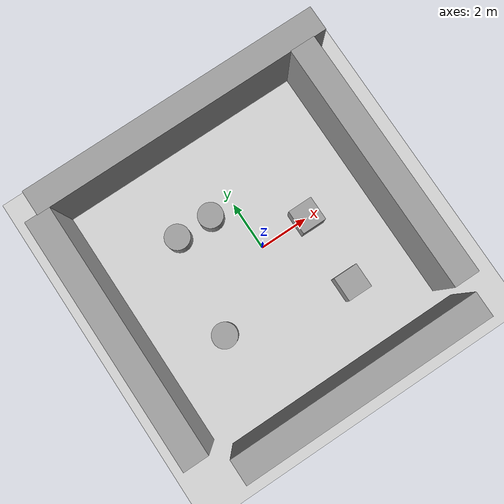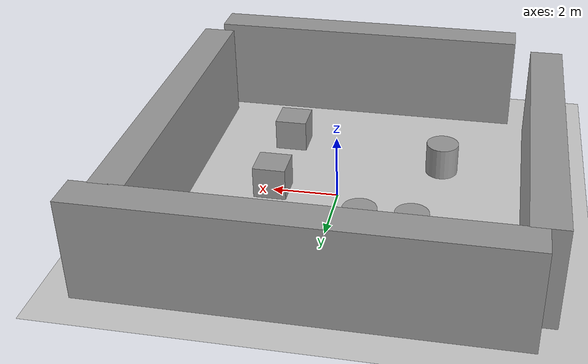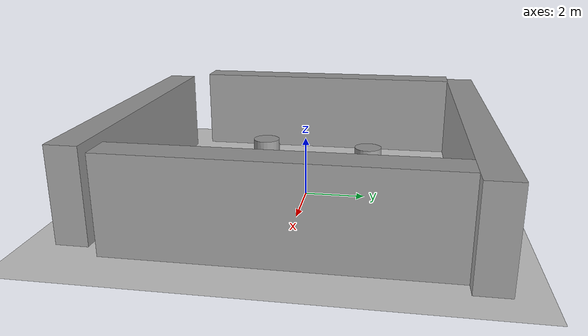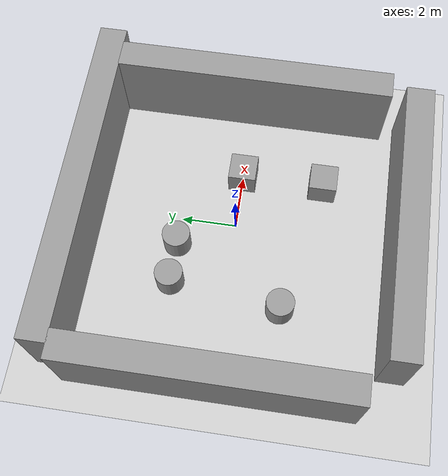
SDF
<?xml version="1.0" ?>
<sdf version='1.4'>
  <world name='default'>
    <include>
      <uri>model://ground_plane</uri>
    </include>
    <include>
      <uri>model://sun</uri>
    </include>
    <scene>
      <ambient>0.4 0.4 0.4 1</ambient>
      <background>0.7 0.7 0.7 1</background>
      <shadows>1</shadows>
      <sky>True</sky>
    </scene>
    <physics type='ode'>
      <max_step_size>0.001</max_step_size>
      <real_time_factor>1</real_time_factor>
      <real_time_update_rate>1000</real_time_update_rate>
      <!-- real time factor = real_time_update_rate * max_step_size = 1000 * 0.001 = 1.0 -->
      <gravity>0 0 -9.8</gravity>
    </physics>
    <spherical_coordinates>
      <surface_model>EARTH_WGS84</surface_model>
      <latitude_deg>0</latitude_deg>
      <longitude_deg>0</longitude_deg>
      <elevation>0</elevation>
      <heading_deg>0</heading_deg>
    </spherical_coordinates>
    <model name='unit_box_1'>
      <pose>2 0 0.5 0 -0 0</pose>
      <link name='link'>
        <inertial>
          <mass>100</mass>
          <inertia>
            <ixx>1</ixx>
            <ixy>0</ixy>
            <ixz>0</ixz>
            <iyy>1</iyy>
            <iyz>0</iyz>
            <izz>1</izz>
          </inertia>
        </inertial>
        <collision name='collision'>
          <geometry>
            <box>
              <size>1 1 1</size>
            </box>
          </geometry>
          <max_contacts>10</max_contacts>
          <surface>
            <bounce/>
            <friction>
              <ode/>
            </friction>
            <contact>
              <ode/>
            </contact>
          </surface>
        </collision>
        <visual name='visual'>
          <geometry>
            <box>
              <size>1 1 1</size>
            </box>
          </geometry>
          <material>
            <script>
              <uri>file://media/materials/scripts/gazebo.material</uri>
              <name>Gazebo/Grey</name>
            </script>
          </material>
        </visual>
        <velocity_decay>
          <linear>0</linear>
          <angular>0</angular>
        </velocity_decay>
        <self_collide>0</self_collide>
        <kinematic>0</kinematic>
        <gravity>1</gravity>
      </link>
      <static>1</static>
    </model>
    <model name='unit_box_2'>
      <pose>2 -3 0.5 0 -0 0</pose>
      <link name='link'>
        <inertial>
          <mass>100</mass>
          <inertia>
            <ixx>1</ixx>
            <ixy>0</ixy>
            <ixz>0</ixz>
            <iyy>1</iyy>
            <iyz>0</iyz>
            <izz>1</izz>
          </inertia>
        </inertial>
        <collision name='collision'>
          <geometry>
            <box>
              <size>1 1 1</size>
            </box>
          </geometry>
          <max_contacts>10</max_contacts>
          <surface>
            <bounce/>
            <friction>
              <ode/>
            </friction>
            <contact>
              <ode/>
            </contact>
          </surface>
        </collision>
        <visual name='visual'>
          <geometry>
            <box>
              <size>1 1 1</size>
            </box>
          </geometry>
          <material>
            <script>
              <uri>file://media/materials/scripts/gazebo.material</uri>
              <name>Gazebo/Grey</name>
            </script>
          </material>
        </visual>
        <velocity_decay>
          <linear>0</linear>
          <angular>0</angular>
        </velocity_decay>
        <self_collide>0</self_collide>
        <kinematic>0</kinematic>
        <gravity>1</gravity>
      </link>
      <static>1</static>
    </model>
    <model name='unit_cylinder_1'>
      <pose>-3 -2 0.5 0 -0 0</pose>
      <link name='link'>
        <inertial>
          <mass>100</mass>
          <inertia>
            <ixx>1</ixx>
            <ixy>0</ixy>
            <ixz>0</ixz>
            <iyy>1</iyy>
            <iyz>0</iyz>
            <izz>1</izz>
          </inertia>
        </inertial>
        <collision name='collision'>
          <geometry>
            <cylinder>
              <radius>0.5</radius>
              <length>1</length>
            </cylinder>
          </geometry>
          <max_contacts>10</max_contacts>
          <surface>
            <bounce/>
            <friction>
              <ode/>
            </friction>
            <contact>
              <ode/>
            </contact>
          </surface>
        </collision>
        <visual name='visual'>
          <geometry>
            <cylinder>
              <radius>0.5</radius>
              <length>1</length>
            </cylinder>
          </geometry>
          <material>
            <script>
              <uri>file://media/materials/scripts/gazebo.material</uri>
              <name>Gazebo/Grey</name>
            </script>
          </material>
        </visual>
        <velocity_decay>
          <linear>0</linear>
          <angular>0</angular>
        </velocity_decay>
        <self_collide>0</self_collide>
        <kinematic>0</kinematic>
        <gravity>1</gravity>
      </link>
      <static>1</static>
    </model>
    <model name='unit_cylinder_2'>
      <pose>-1 2 0.5 0 -0 0</pose>
      <link name='link'>
        <inertial>
          <mass>100</mass>
          <inertia>
            <ixx>1</ixx>
            <ixy>0</ixy>
            <ixz>0</ixz>
            <iyy>1</iyy>
            <iyz>0</iyz>
            <izz>1</izz>
          </inertia>
        </inertial>
        <collision name='collision'>
          <geometry>
            <cylinder>
              <radius>0.5</radius>
              <length>1</length>
            </cylinder>
          </geometry>
          <max_contacts>10</max_contacts>
          <surface>
            <bounce/>
            <friction>
              <ode/>
            </friction>
            <contact>
              <ode/>
            </contact>
          </surface>
        </collision>
        <visual name='visual'>
          <geometry>
            <cylinder>
              <radius>0.5</radius>
              <length>1</length>
            </cylinder>
          </geometry>
          <material>
            <script>
              <uri>file://media/materials/scripts/gazebo.material</uri>
              <name>Gazebo/Grey</name>
            </script>
          </material>
        </visual>
        <velocity_decay>
          <linear>0</linear>
          <angular>0</angular>
        </velocity_decay>
        <self_collide>0</self_collide>
        <kinematic>0</kinematic>
        <gravity>1</gravity>
      </link>
      <static>1</static>
    </model>
    <model name='unit_cylinder_3'>
      <pose>-2.47543 2 0.5 0 -0 0</pose>
      <link name='link'>
        <inertial>
          <mass>100</mass>
          <inertia>
            <ixx>1</ixx>
            <ixy>0</ixy>
            <ixz>0</ixz>
            <iyy>1</iyy>
            <iyz>0</iyz>
            <izz>1</izz>
          </inertia>
        </inertial>
        <collision name='collision'>
          <geometry>
            <cylinder>
              <radius>0.5</radius>
              <length>1</length>
            </cylinder>
          </geometry>
          <max_contacts>10</max_contacts>
          <surface>
            <bounce/>
            <friction>
              <ode/>
            </friction>
            <contact>
              <ode/>
            </contact>
          </surface>
        </collision>
        <visual name='visual'>
          <geometry>
            <cylinder>
              <radius>0.5</radius>
              <length>1</length>
            </cylinder>
          </geometry>
          <material>
            <script>
              <uri>file://media/materials/scripts/gazebo.material</uri>
              <name>Gazebo/Grey</name>
            </script>
          </material>
        </visual>
        <velocity_decay>
          <linear>0</linear>
          <angular>0</angular>
        </velocity_decay>
        <self_collide>0</self_collide>
        <kinematic>0</kinematic>
        <gravity>1</gravity>
      </link>
      <static>1</static>
    </model>
    <model name='unit_wall_1'>
      <pose>-6 0 1.5 0 0 0</pose>
      <link name='link'>
        <inertial>
          <mass>100</mass>
          <inertia>
            <ixx>1</ixx>
            <ixy>0</ixy>
            <ixz>0</ixz>
            <iyy>1</iyy>
            <iyz>0</iyz>
            <izz>1</izz>
          </inertia>
        </inertial>
        <collision name='collision'>
          <geometry>
            <box>
              <size>1 10 3</size>
            </box>
          </geometry>
          <max_contacts>10</max_contacts>
          <surface>
            <bounce/>
            <friction>
              <ode/>
            </friction>
            <contact>
              <ode/>
            </contact>
          </surface>
        </collision>
        <visual name='visual'>
          <geometry>
            <box>
              <size>1 10 3</size>
            </box>
          </geometry>
          <material>
            <script>
              <uri>file://media/materials/scripts/gazebo.material</uri>
              <name>Gazebo/Grey</name>
            </script>
          </material>
        </visual>
        <velocity_decay>
          <linear>0</linear>
          <angular>0</angular>
        </velocity_decay>
        <self_collide>0</self_collide>
        <kinematic>0</kinematic>
        <gravity>1</gravity>
      </link>
      <static>1</static>
    </model>
    <model name='unit_wall_2'>
      <pose>5 0 1.5 0 -0 0</pose>
      <link name='link'>
        <inertial>
          <mass>100</mass>
          <inertia>
            <ixx>1</ixx>
            <ixy>0</ixy>
            <ixz>0</ixz>
            <iyy>1</iyy>
            <iyz>0</iyz>
            <izz>1</izz>
          </inertia>
        </inertial>
        <collision name='collision'>
          <geometry>
            <box>
              <size>1 10 3</size>
            </box>
          </geometry>
          <max_contacts>10</max_contacts>
          <surface>
            <bounce/>
            <friction>
              <ode/>
            </friction>
            <contact>
              <ode/>
            </contact>
          </surface>
        </collision>
        <visual name='visual'>
          <geometry>
            <box>
              <size>1 10 3</size>
            </box>
          </geometry>
          <material>
            <script>
              <uri>file://media/materials/scripts/gazebo.material</uri>
              <name>Gazebo/Grey</name>
            </script>
          </material>
        </visual>
        <velocity_decay>
          <linear>0</linear>
          <angular>0</angular>
        </velocity_decay>
        <self_collide>0</self_collide>
        <kinematic>0</kinematic>
        <gravity>1</gravity>
      </link>
      <static>1</static>
    </model>
    <model name='unit_wall_3'>
      <pose>0 -6 1.5 0 -0 0</pose>
      <link name='link'>
        <inertial>
          <mass>100</mass>
          <inertia>
            <ixx>1</ixx>
            <ixy>0</ixy>
            <ixz>0</ixz>
            <iyy>1</iyy>
            <iyz>0</iyz>
            <izz>1</izz>
          </inertia>
        </inertial>
        <collision name='collision'>
          <geometry>
            <box>
              <size>10 1 3</size>
            </box>
          </geometry>
          <max_contacts>10</max_contacts>
          <surface>
            <bounce/>
            <friction>
              <ode/>
            </friction>
            <contact>
              <ode/>
            </contact>
          </surface>
        </collision>
        <visual name='visual'>
          <geometry>
            <box>
              <size>10 1 3</size>
            </box>
          </geometry>
          <material>
            <script>
              <uri>file://media/materials/scripts/gazebo.material</uri>
              <name>Gazebo/Grey</name>
            </script>
          </material>
        </visual>
        <velocity_decay>
          <linear>0</linear>
          <angular>0</angular>
        </velocity_decay>
        <self_collide>0</self_collide>
        <kinematic>0</kinematic>
        <gravity>1</gravity>
      </link>
      <static>1</static>
    </model>
    <model name='unit_wall_4'>
      <pose>0 5.47378 1.5 0 -0 0</pose>
      <link name='link'>
        <inertial>
          <mass>100</mass>
          <inertia>
            <ixx>1</ixx>
            <ixy>0</ixy>
            <ixz>0</ixz>
            <iyy>1</iyy>
            <iyz>0</iyz>
            <izz>1</izz>
          </inertia>
        </inertial>
        <collision name='collision'>
          <geometry>
            <box>
              <size>12 1 3</size>
            </box>
          </geometry>
          <max_contacts>10</max_contacts>
          <surface>
            <bounce/>
            <friction>
              <ode/>
            </friction>
            <contact>
              <ode/>
            </contact>
          </surface>
        </collision>
        <visual name='visual'>
          <geometry>
            <box>
              <size>12 1 3</size>
            </box>
          </geometry>
          <material>
            <script>
              <uri>file://media/materials/scripts/gazebo.material</uri>
              <name>Gazebo/Grey</name>
            </script>
          </material>
        </visual>
        <velocity_decay>
          <linear>0</linear>
          <angular>0</angular>
        </velocity_decay>
        <self_collide>0</self_collide>
        <kinematic>0</kinematic>
        <gravity>1</gravity>
      </link>
      <static>1</static>
    </model>
  </world>
</sdf>
